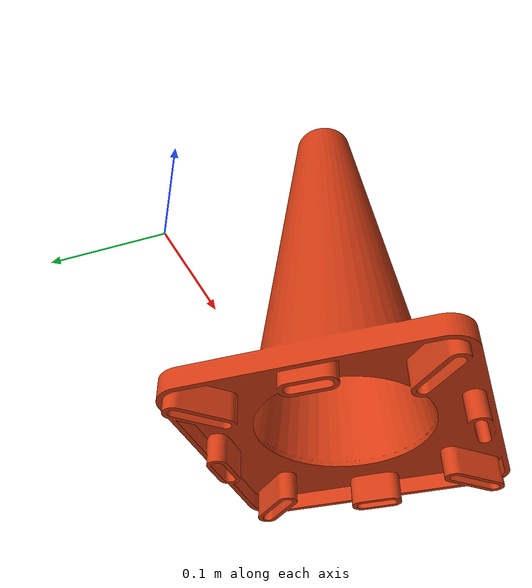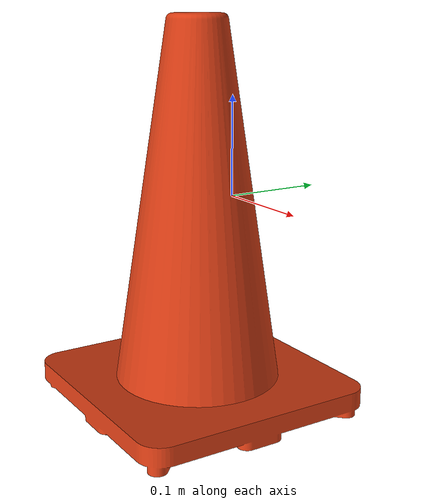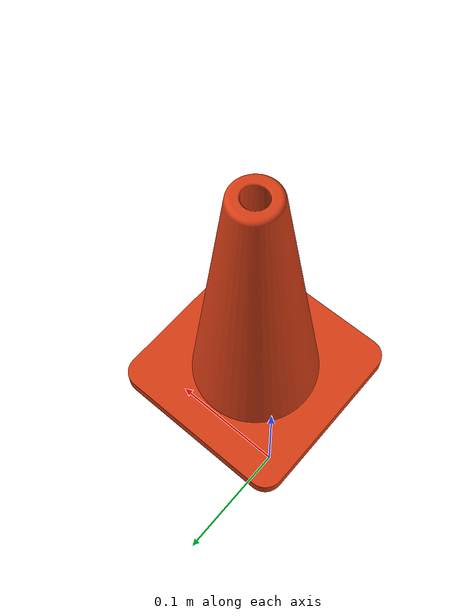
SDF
<?xml version="1.0" ?>
<sdf version="1.6">
  <model name="orange_cone">
    <static>true</static>
    <link name="body">
      <visual name="visual">
        <pose>0 0 -0.15 1.5708 0 0</pose>
        <geometry>
          <mesh>
            <uri>model://orange_cone/meshes/300mm_orange_road_cone.stl</uri>
            <scale>0.001 0.001 0.001</scale>
          </mesh>
        </geometry>
        <material>
              <!-- Vivid orange: -->
          <ambient>0.75 0.22 0.08 1</ambient>
          <diffuse>0.85 0.24 0.08 1</diffuse>
          <specular>0.25 0.13 0.04 1</specular>
          <emissive>0.0 0.0 0.0 1</emissive>

        </material>
      </visual>
      <collision name="collision">
        <pose>0 0 0 1.5708 0 0</pose>
        <geometry>
          <mesh>
            <uri>model://orange_cone/meshes/300mm_orange_road_cone.stl</uri>
            <scale>0.001 0.001 0.001</scale>
          </mesh>
        </geometry>
      </collision>
    </link>
  </model>
</sdf>
